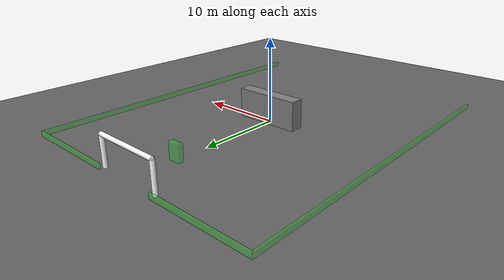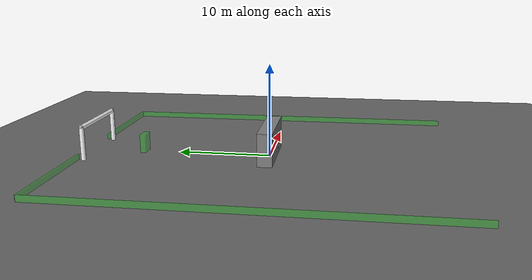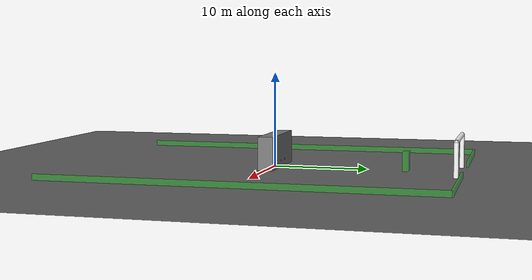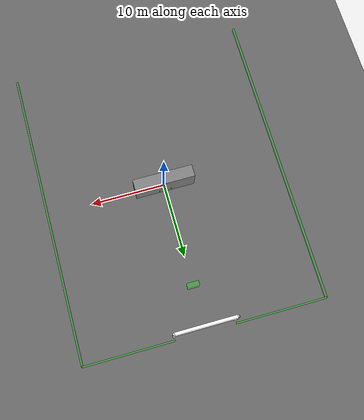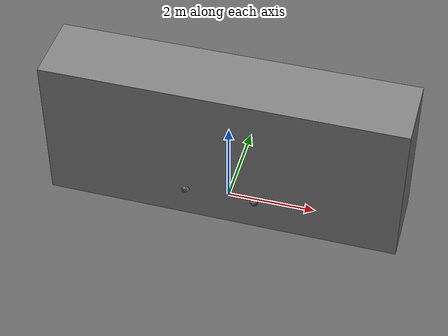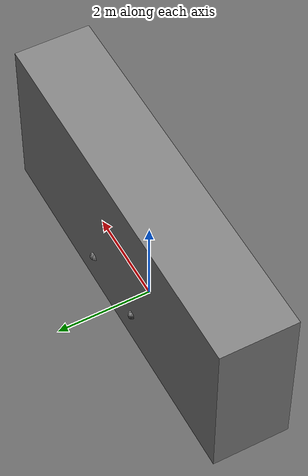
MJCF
<mujoco model="ant"> <!-- Makes an ant model-->
  <compiler angle="degree" coordinate="local" inertiafromgeom="true"/> <!-- Use angle as degrees, and some simulation options-->
  <option timestep="0.01" iterations="4" />
  <custom>
    <!-- brax (physics simulator) custom params -->
    <numeric data="0.0 0.0 0.55 1.0 0.0 0.0 0.0 0.0 1.0 0.0 -1.0 0.0 -1.0 0.0 1.0 0.0 0.0 0.0 0.0" name="init_qpos"/>
    <numeric data="1000" name="constraint_limit_stiffness"/>
    <numeric data="4000" name="constraint_stiffness"/>
    <numeric data="10" name="constraint_ang_damping"/>
    <numeric data="20" name="constraint_vel_damping"/>
    <numeric data="0.5" name="joint_scale_pos"/>
    <numeric data="0.2" name="joint_scale_ang"/>
    <numeric data="0.0" name="ang_damping"/>
    <numeric data="1" name="spring_mass_scale"/>
    <numeric data="1" name="spring_inertia_scale"/>
    <numeric data="15" name="solver_maxls"/>
  </custom>
  <default>
    <joint armature="1" damping="1" limited="true"/>
    <geom contype="0" conaffinity="0" condim="3" density="5.0" friction="1 0.5 0.5"/>
  </default>
  <asset>
    <texture builtin="gradient" height="100" rgb1="1 1 1" rgb2="0 0 0" type="skybox" width="100"/>
    <texture builtin="flat" height="1278" mark="cross" markrgb="1 1 1" name="texgeom" random="0.01" rgb1="0.8 0.6 0.4" rgb2="0.8 0.6 0.4" type="cube" width="127"/>
    <texture builtin="checker" height="100" name="texplane" rgb1="0 0 0" rgb2="0.8 0.8 0.8" type="2d" width="100"/>
    <material name="MatPlane" reflectance="0.5" shininess="1" specular="1" texrepeat="60 60" texture="texplane"/>
    <material name="geom" texture="texgeom" texuniform="true"/>
  </asset>
  <worldbody> <!-- The rest of the world (light, ground plane, etc.)-->
    <light cutoff="100" diffuse="1 1 1" dir="-0 0 -1.3" directional="true" exponent="1" pos="0 0 1.3" specular=".1 .1 .1"/>
    <geom conaffinity="1" condim="3" material="MatPlane" name="floor" pos="0 0 0" size="150 150 40" type="plane"/>
    <!-- ANT AGENT -->
    <body name="torso" pos="0 0 0.75"> <!-- Ant has a central torso-->
      <camera name="track" mode="trackcom" pos="0 -3 0.3" xyaxes="1 0 0 0 0 1"/>
      <geom name="torso_geom" pos="0 0 0" size="0.25" type="sphere" conaffinity="1" />
      <joint armature="0" damping="0" limited="false" margin="0.01" name="root" pos="0 0 0" type="free"/>
      <body name="front_left_leg" pos="0 0 0"> <!-- Ant has 4 legs-->
        <geom fromto="0.0 0.0 0.0 0.2 0.2 0.0" name="aux_1_geom" size="0.08" type="capsule"/>
        <body name="aux_1" pos="0.2 0.2 0">
          <joint axis="0 0 1" name="hip_1" pos="0.0 0.0 0.0" range="-30 30" type="hinge"/>
          <geom fromto="0.0 0.0 0.0 0.2 0.2 0.0" name="left_leg_geom" size="0.08" type="capsule"/>
          <body pos="0.2 0.2 0">
            <joint axis="-1 1 0" name="ankle_1" pos="0.0 0.0 0.0" range="30 70" type="hinge"/>
            <geom fromto="0.0 0.0 0.0 0.4 0.4 0.0" name="left_ankle_geom" size="0.08" type="capsule"/>
            <geom name="left_foot_geom" contype="1" pos="0.4 0.4 0" size="0.08" type="sphere" mass="0" conaffinity="1"/>
          </body>
        </body>
      </body>
      <body name="front_right_leg" pos="0 0 0">
        <geom fromto="0.0 0.0 0.0 -0.2 0.2 0.0" name="aux_2_geom" size="0.08" type="capsule"/>
        <body name="aux_2" pos="-0.2 0.2 0">
          <joint axis="0 0 1" name="hip_2" pos="0.0 0.0 0.0" range="-30 30" type="hinge"/>
          <geom fromto="0.0 0.0 0.0 -0.2 0.2 0.0" name="right_leg_geom" size="0.08" type="capsule"/>
          <body pos="-0.2 0.2 0">
            <joint axis="1 1 0" name="ankle_2" pos="0.0 0.0 0.0" range="-70 -30" type="hinge"/>
            <geom fromto="0.0 0.0 0.0 -0.4 0.4 0.0" name="right_ankle_geom" size="0.08" type="capsule"/>
            <geom name="right_foot_geom" contype="1" pos="-0.4 0.4 0" size="0.08" type="sphere" mass="0" conaffinity="1"/>
          </body>
        </body>
      </body>
      <body name="back_leg" pos="0 0 0">
        <geom fromto="0.0 0.0 0.0 -0.2 -0.2 0.0" name="aux_3_geom" size="0.08" type="capsule"/>
        <body name="aux_3" pos="-0.2 -0.2 0">
          <joint axis="0 0 1" name="hip_3" pos="0.0 0.0 0.0" range="-30 30" type="hinge"/>
          <geom fromto="0.0 0.0 0.0 -0.2 -0.2 0.0" name="back_leg_geom" size="0.08" type="capsule"/>
          <body pos="-0.2 -0.2 0">
            <joint axis="-1 1 0" name="ankle_3" pos="0.0 0.0 0.0" range="-70 -30" type="hinge"/>
            <geom fromto="0.0 0.0 0.0 -0.4 -0.4 0.0" name="third_ankle_geom" size="0.08" type="capsule"/>
            <geom name="third_foot_geom" contype="1" pos="-0.4 -0.4 0" size="0.08" type="sphere" mass="0" conaffinity="1"/>
          </body>
        </body>
      </body>
      <body name="right_back_leg" pos="0 0 0">
        <geom fromto="0.0 0.0 0.0 0.2 -0.2 0.0" name="aux_4_geom" size="0.08" type="capsule"/>
        <body name="aux_4" pos="0.2 -0.2 0">
          <joint axis="0 0 1" name="hip_4" pos="0.0 0.0 0.0" range="-30 30" type="hinge"/>
          <geom fromto="0.0 0.0 0.0 0.2 -0.2 0.0" name="rightback_leg_geom" size="0.08" type="capsule"/>
          <body pos="0.2 -0.2 0">
            <joint axis="1 1 0" name="ankle_4" pos="0.0 0.0 0.0" range="30 70" type="hinge"/>
            <geom fromto="0.0 0.0 0.0 0.4 -0.4 0.0" name="fourth_ankle_geom" size="0.08" type="capsule"/>
            <geom name="fourth_foot_geom" contype="1" pos="0.4 -0.4 0" size="0.08" type="sphere" mass="0" conaffinity="1"/>
          </body>
        </body>
      </body>
    </body>

    <!-- GOAL OBSTACLE -->

    <body name="obstacle_1" pos="0 14 0">
        <geom name="obstacle_1_geom" type="box" pos="0 0 1" size="0.75 0.3 1" rgba="0 1 0 0.3" contype="0" conaffinity="0"/>
    </body>

    <!-- Ball -->
    <body name="object" pos="0.0 0.0 0.5" >
      <geom rgba="1 1 1 0" type="sphere" size="0.5 0.5 0.5" density="1" conaffinity="0"/>
      <geom name="object_geom" rgba="1 1 1 1" type="sphere" size="0.5 0.5 0.5" density="0.1" contype="1" conaffinity="0"/>
      <joint name="obj_slidex" type="slide" pos="0 0 0" axis="1 0 0" range="-100 100" damping="0.0"/>
      <joint name="obj_slidey" type="slide" pos="0 0 0" axis="0 1 0" range="-100 100" damping="0.0"/>
    </body>

    <!-- Target: box (goal) -->
    <body name="target" pos="0 0 0">
      <!-- The joint `ref` attributes are removed for brax. -->
      <joint armature="0" axis="1 0 0" damping="0" limited="true" name="target_x" pos="0 0 0" range="-100 100" stiffness="0" type="slide"/>
      <joint armature="0" axis="0 1 0" damping="0" limited="true" name="target_y" pos="0 0 0" range="-100 100" stiffness="0" type="slide"/>
      <geom conaffinity="0" contype="0" name="target" pos="0 0 1.75" size="4.0 0.8 1.75" type="box" mass="1.0"/>
    </body>

    <!-- Left Pole -->
    <!-- From (x, y, z) to (a, b, c) -> "x y z a b c" -->
    <body name="pole_1" pos="0 19.4 0">
        <geom name="pole_1_geom" type="capsule" fromto="4.0 0 0.0 4.0 0 3.5" size="0.25" rgba="1 1 1 1" density="0.1" contype="2" conaffinity="0"/>
    </body>

    <!-- Right Pole -->
    <body name="pole_2" pos="0 19.4 0">
        <geom name="pole_2_geom" type="capsule" fromto="-4.0 0 0.0 -4.0 0 3.5" size="0.25" rgba="1 1 1 1" density="0.1" contype="2" conaffinity="0"/>
    </body>

    <!-- Top Pole -->
    <body name="pole_3" pos="0 19.4 0">
        <geom name="pole_3_geom" type="capsule" fromto="-4.0 0 3.5 4.0 0 3.5" size="0.25" rgba="1 1 1 1" density="0.1" contype="2" conaffinity="0"/>
    </body>

    <!-- Boundary -->
    <!-- Pos: first is left/right, second is forward/backwards, third is height -->
    <geom name="front_left_boundary" type="box" pos="-10 20 0.3" size="6 0.1 0.3" rgba="0 1 0 0.3" contype="0" conaffinity="0"/>
    <geom name="front_right boundary" type="box" pos="10 20 0.3" size="6 0.1 0.3" rgba="0 1 0 0.3" contype="0" conaffinity="0"/>
    <geom name="left_boundary" type="box" pos="-16 0 0.3" size="0.1 20 0.3" rgba="0 1 0 0.3" contype="0" conaffinity="0"/>
    <geom name="right_boundary" type="box" pos="16 0 0.3" size="0.1 20 0.3" rgba="0 1 0 0.3" contype="0" conaffinity="0"/>

  </worldbody>
  <actuator> <!-- Motors that control each of the 4 hip joints and 4 ankle joints-->
    <motor ctrllimited="true" ctrlrange="-1.0 1.0" joint="hip_4" gear="150"/>
    <motor ctrllimited="true" ctrlrange="-1.0 1.0" joint="ankle_4" gear="150"/>
    <motor ctrllimited="true" ctrlrange="-1.0 1.0" joint="hip_1" gear="150"/>
    <motor ctrllimited="true" ctrlrange="-1.0 1.0" joint="ankle_1" gear="150"/>
    <motor ctrllimited="true" ctrlrange="-1.0 1.0" joint="hip_2" gear="150"/>
    <motor ctrllimited="true" ctrlrange="-1.0 1.0" joint="ankle_2" gear="150"/>
    <motor ctrllimited="true" ctrlrange="-1.0 1.0" joint="hip_3" gear="150"/>
    <motor ctrllimited="true" ctrlrange="-1.0 1.0" joint="ankle_3" gear="150"/>
  </actuator>
</mujoco>
